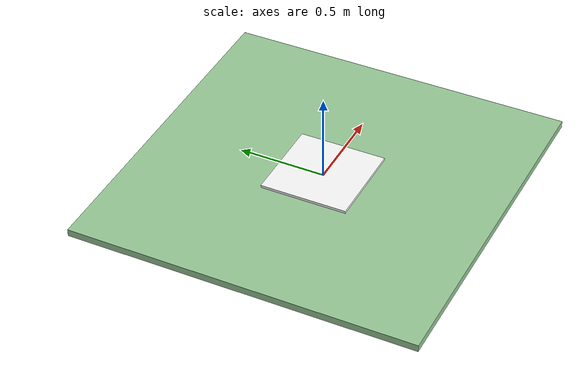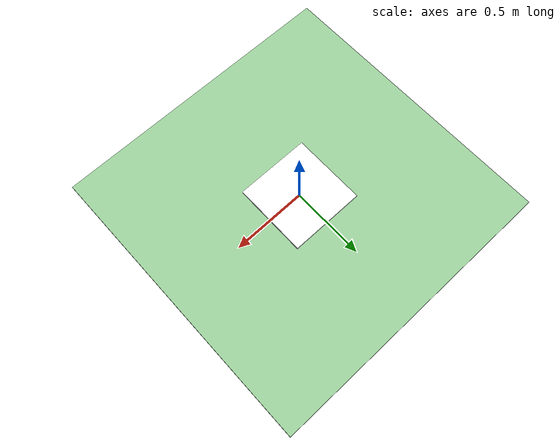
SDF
<?xml version="1.0" encoding="UTF-8"?>
<sdf version='1.9'>
  <model name='barge'>
    <pose>0 0 0 0 0 0</pose>

    <!-- LINKS -->
    <link name='root'>
      <pose>0 0 0 0 0 0</pose>
    </link>

    <link name='base'>
      <pose relative_to='root'>0 0 0 0 0 0</pose>

      <visual name='base_visual'>
        <geometry>
          <box>
            <size>0.5 0.5 0.05</size>
          </box>
        </geometry>
        <material>
          <diffuse>1 1 1 1</diffuse>
          <specular>0.4 0.4 0.4 1</specular>
          <pbr>
            <metal>
              <albedo_map>model://arucotag/arucotag.png</albedo_map>
            </metal>
          </pbr>
        </material>
      </visual>

      <collision name='base_collision'>
        <geometry>
          <box>
            <size>0.5 0.5 0.05</size>
          </box>
        </geometry>
        <surface>
          <friction>
            <ode>
              <mu>1.0</mu>
              <mu2>1.0</mu2>
            </ode>
          </friction>
          <bounce>
            <restitution_coefficient>0.1</restitution_coefficient>
            <threshold>1.0</threshold>
          </bounce>
        </surface>
      </collision>
    </link>

    <link name='lower_platform'>
      <pose>0 0 -0.01 0 0 0</pose>
      <visual name='lower_platform_visual'>
        <geometry>
          <box>
            <size>2 2 0.04</size>
          </box>
        </geometry>
        <material>
          <diffuse>0.6 0.8 0.6 1</diffuse>
          <specular>0.4 0.4 0.4 1</specular>
        </material>
      </visual>
      <collision name='lower_platform_collision'>
        <geometry>
          <box>
            <size>2 2 0.04</size>
          </box>
        </geometry>
        <surface>
          <friction>
            <ode>
              <mu>1.0</mu>
              <mu2>1.0</mu2>
            </ode>
          </friction>
          <bounce>
            <restitution_coefficient>0.1</restitution_coefficient>
            <threshold>1.0</threshold>
          </bounce>
        </surface>
      </collision>
    </link>

    <!-- JOINTS -->
    <joint name="heave" type="prismatic">
      <parent>root</parent>
      <child>base</child>
        <pose>0 0 0 0 0 0</pose>
        <axis>
          <xyz>0 0 1</xyz>
          <limit>
            <lower>-1</lower>
            <upper>1</upper>
            <velocity>1</velocity>
            <effort>500</effort>
          </limit>
          <dynamics>
            <damping>3</damping>
          </dynamics>
        </axis>
    </joint>

    <joint name="base-to-platform" type="fixed">
      <parent>base</parent>
      <child>lower_platform</child>
    </joint>

    <!-- Fix to the world -->
    <joint name="foundation" type="fixed">
      <parent>world</parent>
      <child>root</child>
    </joint>

    <!-- PLUGINS -->
    <plugin
      filename="gz-sim-joint-position-controller-system"
      name="gz::sim::systems::JointPositionController">
      <joint_name>heave</joint_name>
      <use_velocity_commands>true</use_velocity_commands>
      <p_gain>1</p_gain>
      <i_gain>0.1</i_gain>
      <d_gain>0.01</d_gain>
      <i_max>1</i_max>
      <i_min>-1</i_min>
      <topic>heave_ctrl</topic>
      <initial_position>1</initial_position>
    </plugin>

    <plugin
    filename="gz-sim-joint-state-publisher-system"
    name="gz::sim::systems::JointStatePublisher">
      <joint_name>heave</joint_name>
    </plugin>

  </model>
</sdf>
